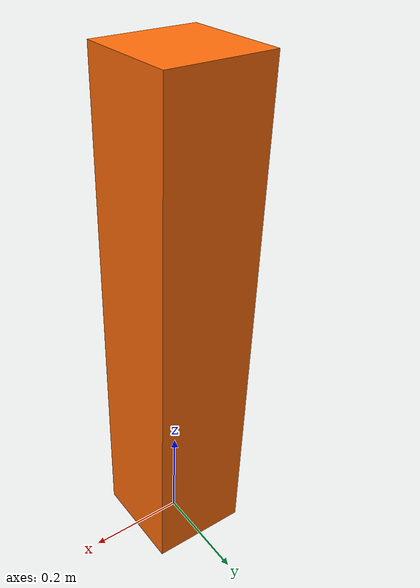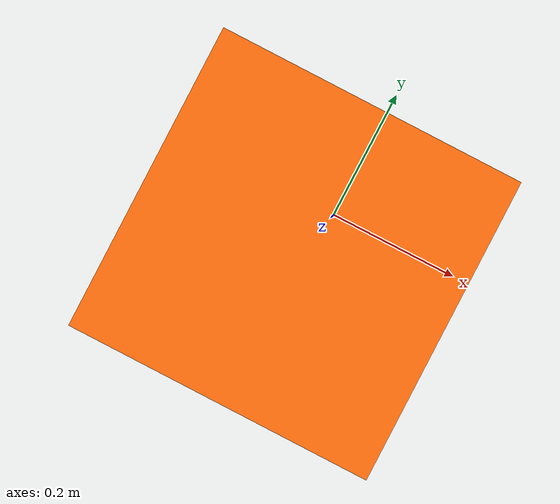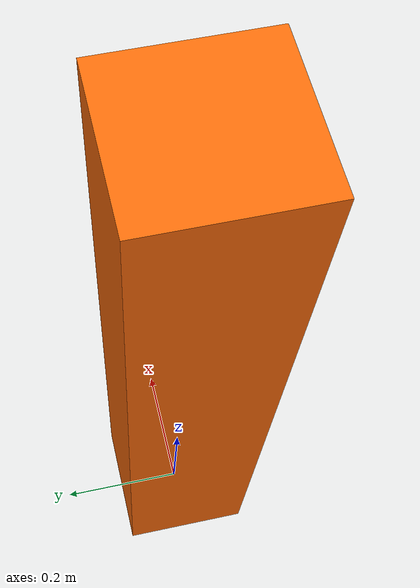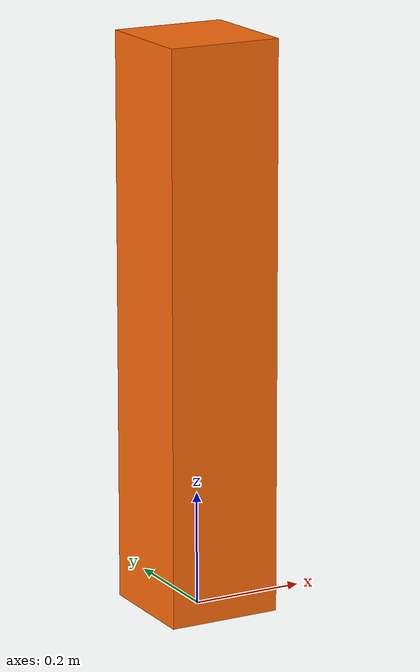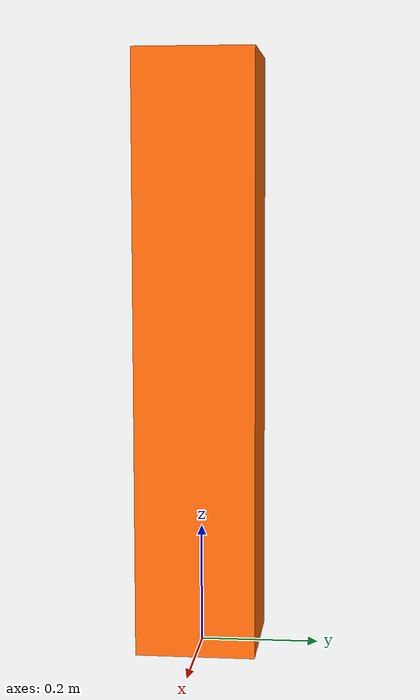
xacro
<?xml version="1.0"?>
<robot xmlns:xacro="http://wiki.ros.org/xacro" name="stand">

  <!-- arm base, orange block/mount for ur5 or ur10 arm -->

  <!-- resolve prefix variable (useful for multi robot) -->
  <xacro:include filename="$(find april_robot_description)/urdf/prefix.urdf.xacro" />

  <!-- "arm base" : make box to elevate the robot arm -->

  <!-- fix arm base, so that it does not fall -->
  <link name="world"/>
  <joint name="world_to_robot" type="fixed">
    <parent link="world"/>
    <child link="arm_base"/>
    <origin xyz="0 0 0" rpy="0 0 0"/>
  </joint>

  <link name="${prefix}arm_base">
    <visual>
      <origin xyz="0 0 0.5" rpy="0 0 0"/>
      <geometry>
        <box size="0.2 0.2 1.0"/>
      </geometry>
      <material name="orange"> <!-- rviz will read this color -->
        <color rgba="${255/255} ${108/255} ${10/255} 1.0"/>
      </material>
    </visual>
    <collision>
      <origin xyz="0 0 0.5" rpy="0 0 0"/>
      <geometry>
        <box size="0.2 0.2 1.0"/>
      </geometry>
    </collision>
    <inertial>
      <origin xyz="0 0 0" rpy="0 0 0"/>
      <mass value="8.2573504e-01"/>
      <inertia ixx="2.2124416e-03" ixy="-1.2294101e-05" ixz="3.4938785e-05"
               iyy="2.1193702e-03" iyz="-5.0120904e-06"
               izz="2.0064271e-03" />
    </inertial>
  </link>
  <gazebo reference="arm_base">
    <material>Gazebo/Orange</material> <!-- gazebo will read this color -->
  </gazebo>

</robot>

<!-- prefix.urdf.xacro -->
<robot xmlns:xacro="http://wiki.ros.org/xacro" name="prefix">

  <!-- resolve prefix variable (useful for multi robot) -->
  <xacro:arg name="tf_prefix" default="" />
  <xacro:property name="tf_prefix_" value="$(arg tf_prefix)" />
  <xacro:if value="${tf_prefix_ == ''}">
    <xacro:property name="prefix" value="" />
  </xacro:if>
  <xacro:unless value="${tf_prefix_ == ''}">
    <xacro:property name="prefix" value="${tf_prefix_}/" />
  </xacro:unless>

</robot>
